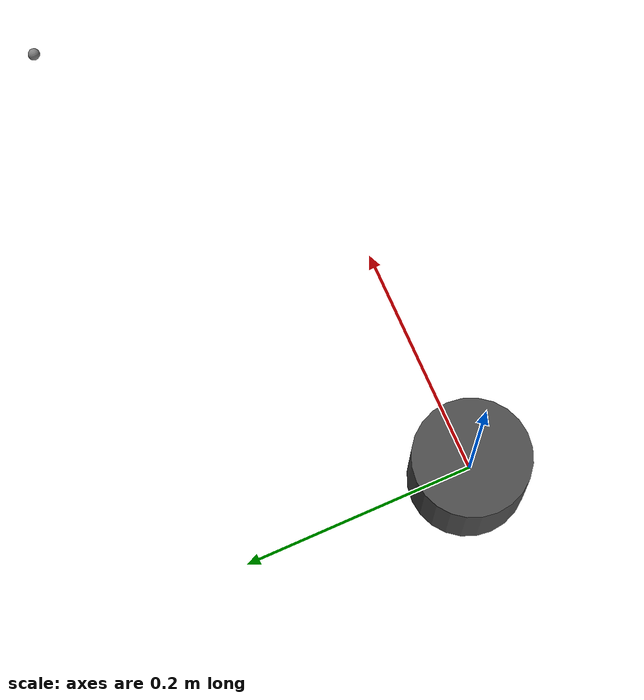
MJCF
<mujoco model="ur3">
  <!-- UR3 robot — capsule collision geometry, no visual meshes (fast training).
       Kinematics from UR3 DH parameters: d1=151.9 a2=-243.65 a3=-213.25
       d4=112.35 d5=85.35 d6=81.9 (all mm). -->

  <compiler angle="radian" autolimits="true"/>
  <option integrator="implicitfast"/>

  <default>
    <default class="ur3">
      <joint axis="0 1 0" range="-6.28319 6.28319" armature="0.1" damping="10"/>
      <!-- position PD controller — same pattern as ur5e menagerie -->
      <general gaintype="fixed" biastype="affine"
               ctrlrange="-6.28319 6.28319"
               gainprm="1500" biasprm="0 -1500 -300"
               forcerange="-56 56"/>
      <default class="size1">
        <general gainprm="500" biasprm="0 -500 -100" forcerange="-28 28"/>
      </default>
      <default class="collision">
        <geom type="capsule" rgba="0.5 0.5 0.5 1" group="3"/>
      </default>
    </default>
  </default>

  <worldbody>
    <body name="base" childclass="ur3">
      <inertial mass="2.0" pos="0 0 0"
                diaginertia="0.00183333 0.00183333 0.003"/>
      <geom type="cylinder" size="0.05 0.04" rgba="0.3 0.3 0.3 1" contype="0" conaffinity="0"/>
      <body name="shoulder_link" pos="0 0 0.1519">
        <inertial mass="2.0" pos="0 0 0"
                  diaginertia="0.00373333 0.00373333 0.00243333"/>
        <joint name="shoulder_pan_joint" class="ur3" axis="0 0 1"/>
        <geom class="collision" size="0.04 0.04" pos="0 0 -0.03"/>
        <body name="upper_arm_link" pos="0 0 0" quat="1 0 1 0">
          <inertial mass="3.42" pos="0 0 0.122"
                    diaginertia="0.0254427 0.0254427 0.00378"/>
          <joint name="shoulder_lift_joint" class="ur3"/>
          <geom class="collision" size="0.035 0.12" pos="0 0 0.12"/>
          <body name="forearm_link" pos="0 0 0.24365">
            <inertial mass="1.26" pos="0 0 0.105"
                      diaginertia="0.00778 0.00778 0.000983"/>
            <joint name="elbow_joint" class="ur3" range="-3.14159 3.14159"/>
            <geom class="collision" size="0.028 0.105" pos="0 0 0.105"/>
            <body name="wrist_1_link" pos="0 0 0.21325" quat="1 0 1 0">
              <inertial mass="0.8" pos="0 0.05 0"
                        diaginertia="0.00065 0.00065 0.000562"/>
              <joint name="wrist_1_joint" class="size1"/>
              <geom class="collision" pos="0 0.025 0" quat="1 1 0 0" size="0.025 0.035"/>
              <body name="wrist_2_link" pos="0 0.11235 0">
                <inertial mass="0.8" pos="0 0 0.04"
                          diaginertia="0.00065 0.00065 0.000562"/>
                <joint name="wrist_2_joint" class="size1" axis="0 0 1"/>
                <geom class="collision" size="0.025 0.035" pos="0 0 0.02"/>
                <geom class="collision" pos="0 0.01 0.04" quat="1 1 0 0" size="0.025 0.02"/>
                <body name="wrist_3_link" pos="0 0 0.08535">
                  <inertial mass="0.35" pos="0 0.03 0"
                            diaginertia="0.0000503 0.0000383 0.0000383"/>
                  <joint name="wrist_3_joint" class="size1"/>
                  <geom class="collision" pos="0 0.04 0" quat="1 1 0 0" size="0.022 0.02"/>
                  <!-- attachment_site matches tool0 orientation -->
                  <site name="attachment_site" pos="0 0.0819 0" quat="-1 1 0 0"/>
                </body>
              </body>
            </body>
          </body>
        </body>
      </body>
    </body>
  </worldbody>

  <actuator>
    <general class="ur3"   name="shoulder_pan"  joint="shoulder_pan_joint"/>
    <general class="ur3"   name="shoulder_lift" joint="shoulder_lift_joint"/>
    <general class="ur3"   name="elbow"         joint="elbow_joint"/>
    <general class="size1" name="wrist_1"       joint="wrist_1_joint"/>
    <general class="size1" name="wrist_2"       joint="wrist_2_joint"/>
    <general class="size1" name="wrist_3"       joint="wrist_3_joint"/>
  </actuator>

  <keyframe>
    <key name="home"
         qpos="-1.5708 -1.5708 1.5708 -1.5708 -1.5708 0"
         ctrl="-1.5708 -1.5708 1.5708 -1.5708 -1.5708 0"/>
  </keyframe>
</mujoco>
